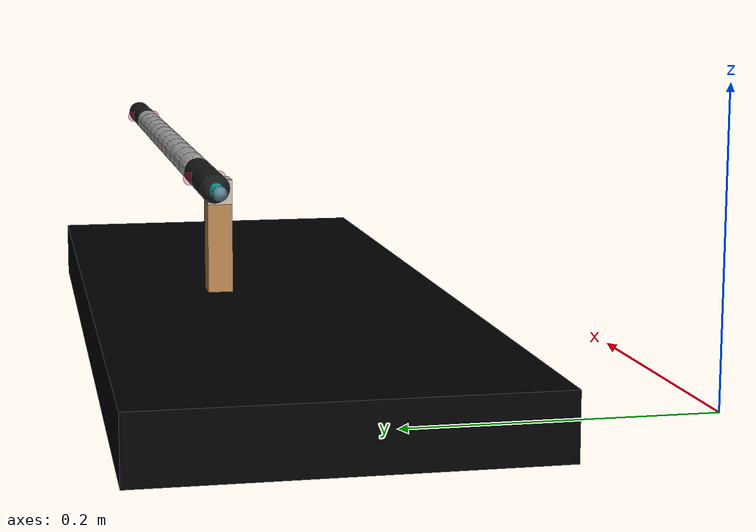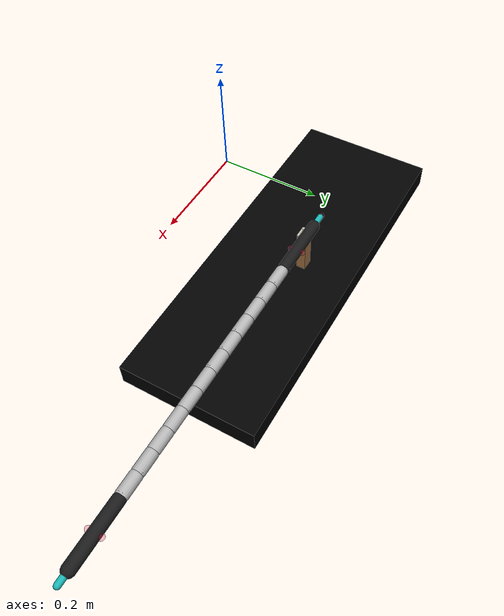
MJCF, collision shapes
<mujoco model="wire_insertion">
    <custom>
        <numeric data="0.4 0.25 0.051527 1 0 0 0" name="wire1_initpos" />
        <!-- horizontal-->
        <numeric data="0.2 0.25 0.029527 1 0 0 0" name="table1_initpos" />
        <!-- vertical-->
    </custom>
    <asset>
        <material name="table_mat" specular="0" shininess="0.5" reflectance="0" rgba="0.93 0.93 0.93 1"/>
        <!-- ceramic table texture and material-->
        <texture file="../textures/ceramic.png" type="cube" name="tex-ceramic"/>
        <material name="table_ceramic" reflectance="0.0" shininess="0.0" specular="0.2" texrepeat="1 1" texture="tex-ceramic" />
        <texture file="../textures/steel-scratched.png" type="cube" name="steel-metal"/>
        <material name="smetal" reflectance="1.0" shininess="1.0" specular="1.0" texrepeat="1 1" texture="steel-metal" texuniform="true"/>
        <texture file="../textures/brass-ambra.png" type="cube" name="brass-metal"/>
        <material name="bmetal"  reflectance="1.0" shininess="1.0" specular="1.0" texrepeat="1 1" texture="brass-metal" texuniform="true"/>
        <mesh file="table_lack_0825/table.stl" name="part4" scale="0.015 0.015 0.02" />
        <texture file="../textures/light-wood.png" name="tex-light-wood" type="2d" />
        <material name="pencil-wood" reflectance="0.5" texrepeat="20 20" texture="tex-light-wood" texuniform="true" />
        <texture file="../textures/red-wood.png" name="tex-red-wood" type="2d" />
        <material name="red-wood" reflectance="0.5" texrepeat="20 20" texture="tex-red-wood" texuniform="true" />
    </asset>

    <equality>
        <connect active="false" body1="wire1" body2="table1" anchor="0.10514361 0.19101518 0.10821976" solimp="1 1 0.5" solref="0.01 0.3" />
        <weld active="true" body1="table1" solimp="1 1 0.5" solref="0.01 0.3" />
    </equality>

    <compiler meshdir=""/>
    <size njmax="8000" nconmax="4000"/>

    <worldbody>
        <!--Wire-->
        <body name="wire1" pos="0.16 0.285 0.122" quat="1 0 0 0">-->
            <inertial pos="0.055 0 0" quat="0.707107 0 0.707107 0" mass="0.00274889" diaginertia="2.97797e-07 2.97797e-07 3.43612e-08" />
            <geom name="wire1_I1_geom" conaffinity="0" contype="0" pos="0 0 0" size="0.005 0.01" quat="0.707107 0 0.707107 0" rgba="0.1 0.7 0.7 1" group="1"  type="capsule" />-->
            <geom name="noviz_collision_wire1_I1" condim="1" size="0.005 0.01" quat="0.707107 0 0.707107 0" type="capsule" rgba="0 0 0 0" group="0" solref="0.001 1"/>
            <geom name="wire1_G0_geom" conaffinity="0" contype="0" pos="0.065 0 0" size="0.01 0.05" quat="0.707107 0 0.707107 0" rgba="0.1 0.1 0.1 1" group="1" type="capsule" />-->
            <geom name="noviz_collision_wire1_G0" condim="3" priority="1" pos="0.065 0 0" size="0.01 0.05" quat="0.707107 0 0.707107 0" type="capsule" rgba="0 0 0 0" group="0" solref="0.001 1"/>
            <!--site for gripper-->
            <site group="1" name="wire1_ltgt_site0" pos="0.075 0.01 0" rgba="0.9019 0.0980 0.2941 0.3" size="0.005 0.005 0.005" type="sphere" />
            <site group="1" name="wire1_rtgt_site0" pos="0.075 -0.01 0" rgba="0.9019 0.0980 0.2941 0.3" size="0.005 0.005 0.005" type="sphere" />
            <!--site for hole-->
            <site group="0" name="wire-hole,conn_site1" pos="-0.0125 0.0 0.0" quat="0.707107 0 0.707107 0" rgba="0.9019 0.0980 0.2941 0.3" size="0.005" />
            <!--site for connection-->
            <site group="1" name="wire1_end" pos="0.125 0 0" quat="0.707107 0 -0.707107 0" rgba="0.9019 0.0980 0.2941 0.3" size="0.005 0.005 0.005" type="sphere" />
            <body name="composite_B1" pos="0.14 0 0">
                <inertial pos="0 0 0" quat="0.707107 0 0.707107 0" mass="0.00001" diaginertia="2.97797e-07 2.97797e-07 3.43612e-08" />
                <joint name="J0_1" pos="-0.0175 0 0" group="3" damping="0.003" type="ball"/>
                <site group="1" name="B1_ltgt_site0" pos="0.0 0.01 0" rgba="0 0 0 0" size="0.005 0.005 0.005" type="sphere" />
                <site group="1" name="B1_rtgt_site0" pos="0.0 -0.01 0" rgba="0 0 0 0" size="0.005 0.005 0.005" type="sphere" />
                <geom name="B1_G1_geom" conaffinity="0" contype="0" pos="0 0 0" size="0.01 0.015" quat="0.707107 0 0.707107 0" rgba="0.7 0.7 0.7 1" group="1" solref="0.001 1" type="capsule" />-->
                <geom name="noviz_collision_B1_G1" pos="0 0 0" size="0.01 0.015" quat="0.707107 0 0.707107 0" type="capsule" rgba="0 0 0 0" group="0" solref="0.001 1"/>
                <body name="composite_B2" pos="0.035 0 0">
                    <inertial pos="0 0 0" quat="0.707107 0 0.707107 0" mass="0.00001" diaginertia="2.97797e-07 2.97797e-07 3.43612e-08" />
                    <joint name="J0_2" pos="-0.0175 0 0" group="3" damping="0.003" type="ball"/>
                    <site group="1" name="B2_ltgt_site0" pos="0.0 0.01 0" rgba="0 0 0 0" size="0.005 0.005 0.005" type="sphere" />
                    <site group="1" name="B2_rtgt_site0" pos="0.0 -0.01 0" rgba="0 0 0 0" size="0.005 0.005 0.005" type="sphere" />
                    <geom name="B2_G1_geom" conaffinity="0" contype="0" pos="0 0 0" size="0.01 0.015" quat="0.707107 0 0.707107 0" rgba="0.7 0.7 0.7 1" group="1" solref="0.001 1" type="capsule" />-->
                    <geom name="noviz_collision_B2_G1" pos="0 0 0" size="0.01 0.015" quat="0.707107 0 0.707107 0" type="capsule" rgba="0 0 0 0" group="0" solref="0.001 1"/>
                    <body name="composite_B3" pos="0.035 0 0">
                        <inertial pos="0 0 0" quat="0.707107 0 0.707107 0" mass="0.00001" diaginertia="2.97797e-07 2.97797e-07 3.43612e-08" />
                        <joint name="J0_3" pos="-0.0175 0 0" group="3" damping="0.003" type="ball"/>
                        <site group="1" name="B3_ltgt_site0" pos="0.0 0.01 0" rgba="0 0 0 0" size="0.005 0.005 0.005" type="sphere" />
                        <site group="1" name="B3_rtgt_site0" pos="0.0 -0.01 0" rgba="0 0 0 0" size="0.005 0.005 0.005" type="sphere" />
                        <geom name="B3_G1_geom" conaffinity="0" contype="0" pos="0 0 0" size="0.01 0.015" quat="0.707107 0 0.707107 0" rgba="0.7 0.7 0.7 1" group="1" solref="0.001 1" type="capsule" />-->
                        <geom name="noviz_collision_B3_G1" pos="0 0 0" size="0.01 0.015" quat="0.707107 0 0.707107 0" type="capsule" rgba="0 0 0 0" group="0" solref="0.001 1"/>
                        <body name="composite_B4" pos="0.035 0 0">
                            <inertial pos="0 0 0" quat="0.707107 0 0.707107 0" mass="0.00001" diaginertia="2.97797e-07 2.97797e-07 3.43612e-08" />
                            <joint name="J0_4" pos="-0.0175 0 0" group="3" damping="0.003" type="ball"/>
                            <site group="1" name="B4_ltgt_site0" pos="0.0 0.01 0" rgba="0 0 0 0" size="0.005 0.005 0.005" type="sphere" />
                            <site group="1" name="B4_rtgt_site0" pos="0.0 -0.01 0" rgba="0 0 0 0" size="0.005 0.005 0.005" type="sphere" />
                            <geom name="B4_G1_geom" conaffinity="0" contype="0" pos="0 0 0" size="0.01 0.015" quat="0.707107 0 0.707107 0" rgba="0.7 0.7 0.7 1" group="1" solref="0.001 1" type="capsule" />-->
                            <geom name="noviz_collision_B4_G1" pos="0 0 0" size="0.01 0.015" quat="0.707107 0 0.707107 0" type="capsule" rgba="0 0 0 0" group="0" solref="0.001 1"/>
                            <body name="composite_B5" pos="0.035 0 0">
                                <inertial pos="0 0 0" quat="0.707107 0 0.707107 0" mass="0.00001" diaginertia="2.97797e-07 2.97797e-07 3.43612e-08" />
                                <joint name="J0_5" pos="-0.0175 0 0" group="3" damping="0.003" type="ball"/>
                                <site group="1" name="B5_ltgt_site0" pos="0.0 0.01 0" rgba="0 0 0 0" size="0.005 0.005 0.005" type="sphere" />
                                <site group="1" name="B5_rtgt_site0" pos="0.0 -0.01 0" rgba="0 0 0 0" size="0.005 0.005 0.005" type="sphere" />
                                <geom name="B5_G1_geom" conaffinity="0" contype="0" pos="0 0 0" size="0.01 0.015" quat="0.707107 0 0.707107 0" rgba="0.7 0.7 0.7 1" group="1" solref="0.001 1" type="capsule" />-->
                                <geom name="noviz_collision_B5_G1" pos="0 0 0" size="0.01 0.015" quat="0.707107 0 0.707107 0" type="capsule" rgba="0 0 0 0" group="0" solref="0.001 1"/>
                                <body name="composite_B6" pos="0.035 0 0">
                                    <inertial pos="0 0 0" quat="0.707107 0 0.707107 0" mass="0.00001" diaginertia="2.97797e-07 2.97797e-07 3.43612e-08" />
                                    <joint name="J0_6" pos="-0.0175 0 0" group="3" damping="0.003" type="ball"/>
                                    <geom name="B6_G1_geom" conaffinity="0" contype="0" pos="0 0 0" size="0.01 0.015" quat="0.707107 0 0.707107 0" rgba="0.7 0.7 0.7 1" group="1" solref="0.001 1" type="capsule" />-->
                                    <geom name="noviz_collision_B6_G1" pos="0 0 0" size="0.01 0.015" quat="0.707107 0 0.707107 0" type="capsule" rgba="0 0 0 0" group="0" solref="0.001 1"/>
                                    <body name="composite_B7" pos="0.035 0 0">
                                        <inertial pos="0 0 0" quat="0.707107 0 0.707107 0" mass="0.00001" diaginertia="2.97797e-07 2.97797e-07 3.43612e-08" />
                                        <joint name="J0_7" pos="-0.0175 0 0" group="3" damping="0.003" type="ball"/>
                                        <geom name="B7_G1_geom" conaffinity="0" contype="0" pos="0 0 0" size="0.01 0.015" quat="0.707107 0 0.707107 0" rgba="0.7 0.7 0.7 1" group="1" solref="0.001 1" type="capsule" />-->
                                        <geom name="noviz_collision_B7_G1" pos="0 0 0" size="0.01 0.015" quat="0.707107 0 0.707107 0" type="capsule" rgba="0 0 0 0" group="0" solref="0.001 1"/>
                                        <body name="composite_B8" pos="0.035 0 0">
                                            <inertial pos="0 0 0" quat="0.707107 0 0.707107 0" mass="0.00001" diaginertia="2.97797e-07 2.97797e-07 3.43612e-08" />
                                            <joint name="J0_8" pos="-0.0175 0 0" group="3" damping="0.003" type="ball"/>
                                            <geom name="B8_G1_geom" conaffinity="0" contype="0" pos="0 0 0" size="0.01 0.015" quat="0.707107 0 0.707107 0" rgba="0.7 0.7 0.7 1" group="1" solref="0.001 1" type="capsule" />-->
                                            <geom name="noviz_collision_B8_G1" pos="0 0 0" size="0.01 0.015" quat="0.707107 0 0.707107 0" type="capsule" rgba="0 0 0 0" group="0" solref="0.001 1"/>
                                            <body name="composite_B9" pos="0.035 0 0">
                                                <inertial pos="0 0 0" quat="0.707107 0 0.707107 0" mass="0.00001" diaginertia="2.97797e-07 2.97797e-07 3.43612e-08" />
                                                <joint name="J0_9" pos="-0.0175 0 0" group="3" damping="0.003" type="ball"/>
                                                <geom name="B9_G1_geom" conaffinity="0" contype="0" pos="0 0 0" size="0.01 0.015" quat="0.707107 0 0.707107 0" rgba="0.7 0.7 0.7 1" group="1" solref="0.001 1" type="capsule" />-->
                                                <geom name="noviz_collision_B9_G1" pos="0 0 0" size="0.01 0.015" quat="0.707107 0 0.707107 0" type="capsule" rgba="0 0 0 0" group="0" solref="0.001 1"/>
                                                <body name="composite_B10" pos="0.035 0 0">
                                                    <inertial pos="0 0 0" quat="0.707107 0 0.707107 0" mass="0.00001" diaginertia="2.97797e-07 2.97797e-07 3.43612e-08" />
                                                    <joint name="J0_10" pos="-0.0175 0 0" group="3" damping="0.003" type="ball"/>
                                                    <geom name="B10_G1_geom" conaffinity="0" contype="0" pos="0 0 0" size="0.01 0.015" quat="0.707107 0 0.707107 0" rgba="0.7 0.7 0.7 1" group="1" solref="0.001 1" type="capsule" />-->
                                                    <geom name="noviz_collision_B10_G1" pos="0 0 0" size="0.01 0.015" quat="0.707107 0 0.707107 0" type="capsule" rgba="0 0 0 0" group="0" solref="0.001 1"/>
                                                    <body name="composite_B11" pos="0.035 0 0">
                                                        <inertial pos="0 0 0" quat="0.707107 0 0.707107 0" mass="0.00001" diaginertia="2.97797e-07 2.97797e-07 3.43612e-08" />
                                                        <joint name="J0_11" pos="-0.0175 0 0" group="3" damping="0.003" type="ball"/>
                                                        <geom name="B11_G1_geom" conaffinity="0" contype="0" pos="0 0 0" size="0.01 0.015" quat="0.707107 0 0.707107 0" rgba="0.7 0.7 0.7 1" group="1" solref="0.001 1" type="capsule" />-->
                                                        <geom name="noviz_collision_B11_G1" pos="0 0 0" size="0.01 0.015" quat="0.707107 0 0.707107 0" type="capsule" rgba="0 0 0 0" group="0" solref="0.001 1"/>
                                                        <body name="composite_B12" pos="0.035 0 0">
                                                            <inertial pos="0 0 0" quat="0.707107 0 0.707107 0" mass="0.00001" diaginertia="2.97797e-07 2.97797e-07 3.43612e-08" />
                                                            <joint name="J0_12" pos="-0.0175 0 0" group="3" damping="0.003" type="ball"/>
                                                            <geom name="B12_G1_geom" conaffinity="0" contype="0" pos="0 0 0" size="0.01 0.015" quat="0.707107 0 0.707107 0" rgba="0.7 0.7 0.7 1" group="1" solref="0.001 1" type="capsule" />-->
                                                            <geom name="noviz_collision_B12_G1" pos="0 0 0" size="0.01 0.015" quat="0.707107 0 0.707107 0" type="capsule" rgba="0 0 0 0" group="0" solref="0.001 1"/>
                                                            <body name="composite_wire2" pos="0.015 0 0">
                                                                <inertial pos="0.055 0 0" quat="0.707107 0 0.707107 0" mass="0.000274889" diaginertia="2.97797e-07 2.97797e-07 3.43612e-08" />
                                                                <joint name="J0_wire2" pos="-0.0175 0 0" group="3" damping="0.003" type="ball"/>
                                                                <geom name="wire2_G0_geom" conaffinity="0" contype="0" pos="0.055 0 0" size="0.01 0.05" quat="0.707107 0 0.707107 0" rgba="0.1 0.1 0.1 1" group="1" type="capsule" />-->
                                                                <geom name="noviz_collision_wire2_G0" pos="0.055 0 0" size="0.01 0.05" quat="0.707107 0 0.707107 0" type="capsule" rgba="0 0 0 0" group="0" solref="0.001 1"/>
                                                                <geom name="wire2_I2_geom" conaffinity="0" contype="0" pos="0.115 0 0" size="0.005 0.01" quat="0.707107 0 0.707107 0" rgba="0.1 0.7 0.7 1" group="1" type="capsule" />-->
                                                                <geom name="noviz_collision_wire2_I2" condim="3" priority="1" pos="0.115 0 0" size="0.005 0.01" quat="0.707107 0 0.707107 0" type="capsule" rgba="0 0 0 0" group="0" solref="0.001 1"/>
                                                                <!--site for gripper-->
                                                                <site group="1" name="wire2_ltgt_site0" pos="0.055 0.01 0" rgba="0.9019 0.0980 0.2941 0.3" size="0.005 0.005 0.005" type="sphere" />
                                                                <site group="1" name="wire2_rtgt_site0" pos="0.055 -0.01 0" rgba="0.9019 0.0980 0.2941 0.3" size="0.005 0.005 0.005" type="sphere" />
                                                                <!--site for hole-->
                                                                <!--site for connection-->
                                                                <site group="1" name="wire2_end" pos="-0.005 0.0 0.0" quat="0 0 1 0" rgba="0 0 0 0" size="0.005 0.005 0.005" type="sphere" />
                                                                <site name="wire2_horizontal_radius_site" pos="0.055 0 0" rgba="0 0 0 0" size="0.0055" />
                                                            </body>
                                                        </body>
                                                    </body>
                                                </body>
                                            </body>
                                        </body>
                                    </body>
                                </body>
                            </body>
                        </body>
                    </body>
                </body>
            </body>
        </body>

<!--            &lt;!&ndash;site for gripper&ndash;&gt;-->
<!--            &lt;!&ndash;site for hole&ndash;&gt;-->
<!--            &lt;!&ndash;site for connection&ndash;&gt;-->

        <!-- Table -->
        <body name="table1" pos="0.2 0.25 0.029527" quat="1 0 0 0">
            <geom conaffinity="0" contype="0" density="0" material="pencil-wood" mesh="part4" name="table1_geom" pos="0 0 0" rgba="0.82 0.71 0.55 1" group="1" solref="0.001 1" type="mesh" />
            <geom density="200" name="noviz_collision_table1_0" pos="0 0 0" quat="1 0 0 0" rgba="0 0 0 0" group="0" size="0.32 0.12 0.02" solref="0.001 1" type="box" />
            <site name="table1_corner_site1" pos="-0.385 -0.140 -0.023" rgba="0 0 0 0" size="0.005" />
            <site name="table1_corner_site2" pos="-0.385 0.140 -0.023" rgba="0 0 0 0" size="0.005" />
            <site name="table1_corner_site3" pos="0.385 -0.140 -0.023" rgba="0 0 0 0" size="0.005" />
            <site name="table1_corner_site4" pos="0.385 0.140 -0.023" rgba="0 0 0 0" size="0.005" />
            <site name="table1_corner_site5" pos="-0.385 -0.140 0.0233" rgba="0 0 0 0" size="0.005" />
            <site name="table1_corner_site6" pos="-0.385 0.140 0.0233" rgba="0 0 0 0" size="0.005" />
            <site name="table1_corner_site7" pos="0.385 -0.140 0.0233" rgba="0 0 0 0" size="0.005" />
            <site name="table1_corner_site8" pos="0.385 0.140 0.0233" rgba="0 0 0 0" size="0.005" />
            <site name="table1_bottom_site" pos="0.0 0.0 -0.0" rgba="0 0 0 0" size="0.0066" />
            <site name="table1_top_site" pos="0.0 0.0 0.02" rgba="0 0 0 0" size="0.0066" />
            <site name="table1_horizontal_radius_site" pos="0.0 0.0 0.0" rgba="0 0 0 0" size="0.18" />
<!--            &lt;!&ndash;Hole Base&ndash;&gt;-->

            <!--Hole 1-->
            <body name="composite_hole1" pos="0.0 0.1 0.08825" quat="0.7071408 0 0.7070727 0">
                <!-- Base-->
                <geom conaffinity="0" contype="0" density="0" material="pencil-wood" size="0.03 0.00825 0.01" name="base1_geom" group="1" pos="0.03825 -0.07 0" quat="1 0 0 0" solref="0.001 1" type="box" />
                <geom density="100" name="noviz_collision_base1" group="0" pos="0.03825 -0.07 0" quat="1 0 0 0" rgba="0 0 0 0" size="0.03 0.00825 0.01" friction="0.95 0.3 0.2" solref="0.001 1" type="box" />
                <!-- Hole-->
                <geom conaffinity="0" contype="0" density="0" material="smetal" size="0.01 0.0016  0.00825" name="hole1_1_geom" group="1" pos="0.0 -0.07665  0" quat="0.7073883 0 0.7068252 0" solref="0.001 1" type="box" />
                <geom density="100" name="noviz_collision_hole1_1" group="0" pos="0.0 -0.07665  0" quat="0.7073883 0 0.7068252 0" rgba="0 0 0 0" size="0.01 0.0016  0.00825" friction="0.95 0.3 0.2" solref="0.001 1" type="box" />
                <geom conaffinity="0" contype="0" density="0" material="smetal" size="0.01 0.00625 0.0016" name="hole1_2_geom" group="1" pos="-0.00665 -0.07 0" quat="0.7073883 0 0.7068252 0" solref="0.001 1" type="box" />
                <geom density="100" name="noviz_collision_hole1_2" group="0" pos="-0.00665 -0.07 0" quat="0.7073883 0 0.7068252 0" rgba="0 0 0 0" size="0.01 0.00625 0.0016" friction="0.95 0.3 0.2" solref="0.001 1" type="box" />
                <geom conaffinity="0" contype="0" density="0" material="smetal" size="0.01 0.00625 0.0016" name="hole1_3_geom" group="1" pos="0.00665 -0.07 0" quat="0.7073883 0 0.7068252 0" solref="0.001 1" type="box" />
                <geom density="100" name="noviz_collision_hole1_3" group="0" pos="0.00665 -0.07 0" quat="0.7073883 0 0.7068252 0" rgba="0 0 0 0" size="0.01 0.00625 0.0016" friction="0.95 0.3 0.2" solref="0.001 1" type="box" />
                <geom conaffinity="0" contype="0" density="0" material="smetal" size="0.01 0.0016 0.00825" name="hole1_4_geom" group="1" pos="0.0 -0.06335 0" quat="0.7073883 0 0.7068252 0" solref="0.001 1" type="box" />
                <geom density="100" name="noviz_collision_hole1_4" group="0" pos="0.0 -0.06335 0" quat="0.7073883 0 0.7068252 0" rgba="0 0 0 0" size="0.01 0.0016 0.00825" friction="0.95 0.3 0.2" solref="0.001 1" type="box" />
                <geom conaffinity="0" contype="0" density="0" material="smetal" size="0.0021 0.00825 0.00825" name="hole1_5_geom" group="1" pos="0.0 -0.07 -0.01" quat="0.7073883 0 0.7068252 0" solref="0.001 1" type="box" />
                <geom density="100" name="noviz_collision_hole1_5" group="0" pos="0.0 -0.07 -0.01" quat="0.7073883 0 0.7068252 0" rgba="0 0 0 0" size="0.0021 0.00825 0.00825" friction="0.95 0.3 0.2" solref="0.001 1" type="box" />
                <site group="0" name="hole-wire,reach_site1" pos="0.0 -0.07 0.048" rgba="0 0 0 0" size="0.005" />
                <site name="composite_hole1_horizontal_radius_site" pos="0.0 -0.07 0" rgba="0 0 0 0" size="0.012" />
            </body>
            <site group="0" name="hole-wire,conn_site1" pos="-0.008 0.03 0.08825" quat="0.7071408 0 0.7070727 0" rgba="0.9019 0.0980 0.2941 0.3" size="0.005" />

<!--            &lt;!&ndash;Hole 1&ndash;&gt;-->
<!--                &lt;!&ndash;Base&ndash;&gt;-->
<!--                &lt;!&ndash;Hole&ndash;&gt;-->

            <!--Clip 1-->
<!--                &lt;!&ndash; Base&ndash;&gt;-->
<!--                &lt;!&ndash; Clip&ndash;&gt;-->

<!--            &lt;!&ndash;Clip 2&ndash;&gt;-->
<!--                &lt;!&ndash; Base&ndash;&gt;-->
<!--                &lt;!&ndash; Clip&ndash;&gt;-->
        </body>

<!--&lt;!&ndash;            &lt;!&ndash; z_leg1 &ndash;&gt;&ndash;&gt;-->
<!--&lt;!&ndash;            &lt;!&ndash; x_leg2 &ndash;&gt;&ndash;&gt;-->
<!--&lt;!&ndash;            &lt;!&ndash; y_leg8 &ndash;&gt;&ndash;&gt;-->
<!--&lt;!&ndash;            &lt;!&ndash; x_leg3 &ndash;&gt;&ndash;&gt;-->
<!--&lt;!&ndash;            &lt;!&ndash; x_leg4 &ndash;&gt;&ndash;&gt;-->
<!--&lt;!&ndash;            &lt;!&ndash; y_leg9 &ndash;&gt;&ndash;&gt;-->

<!--            panel-->

        <!--Hole-->

    </worldbody>

</mujoco>
